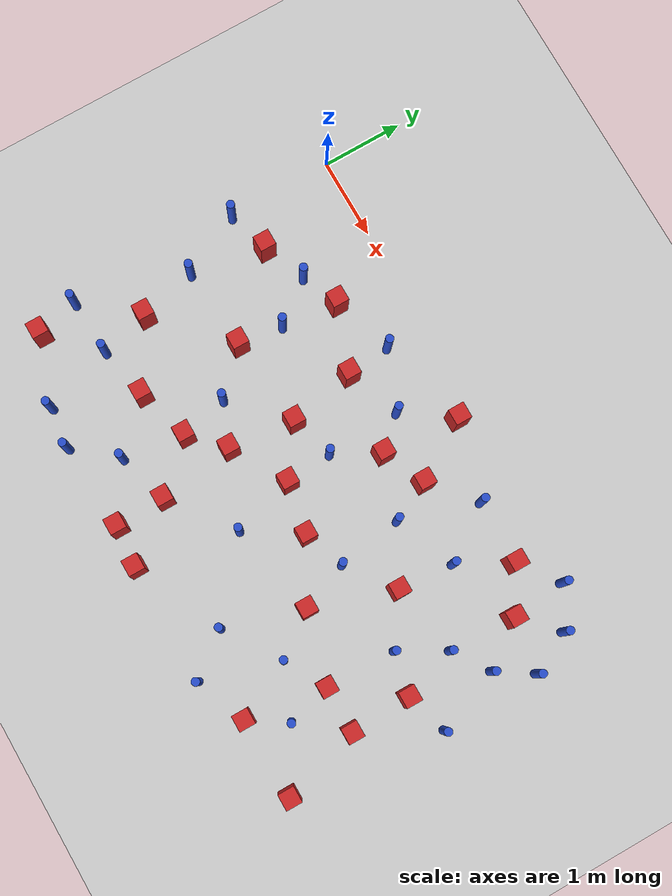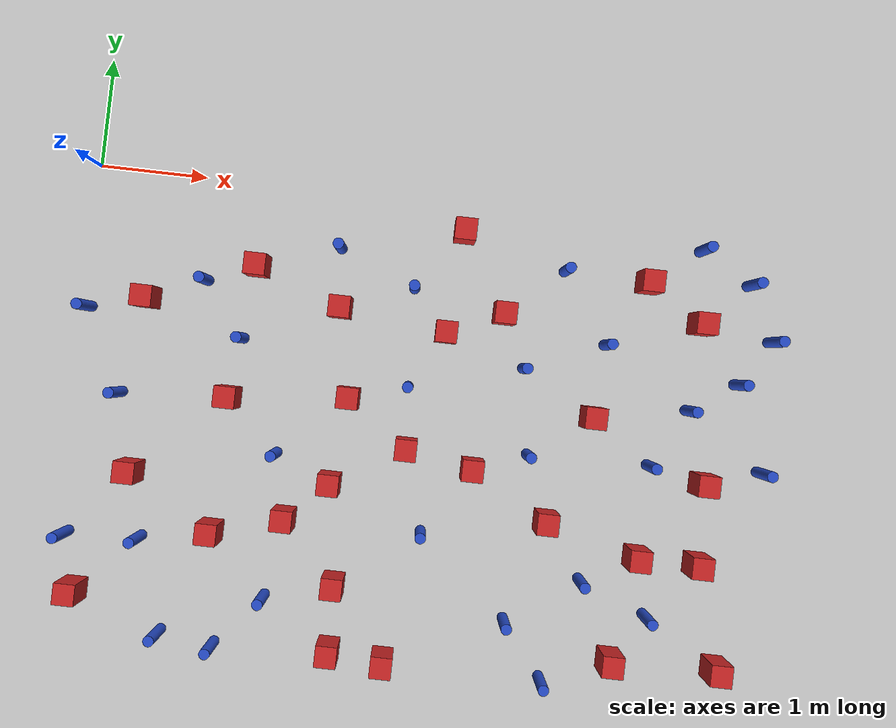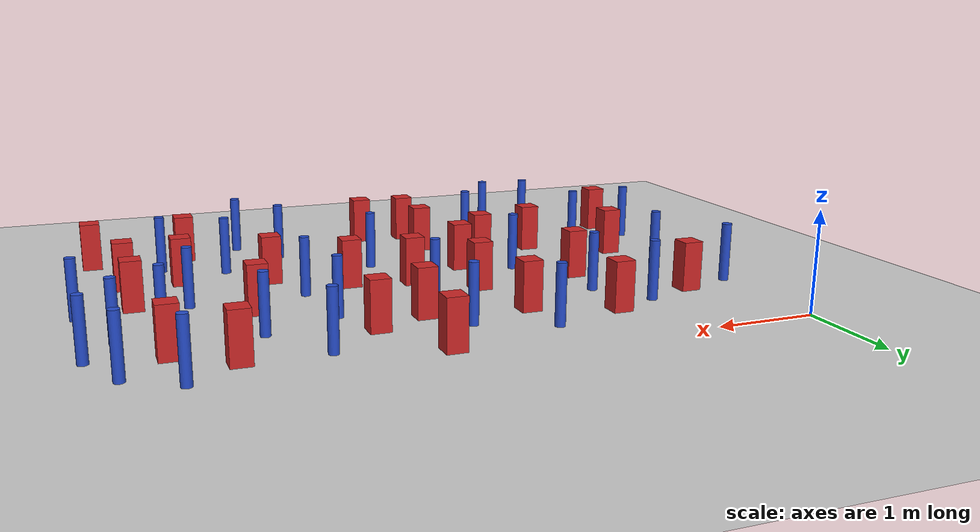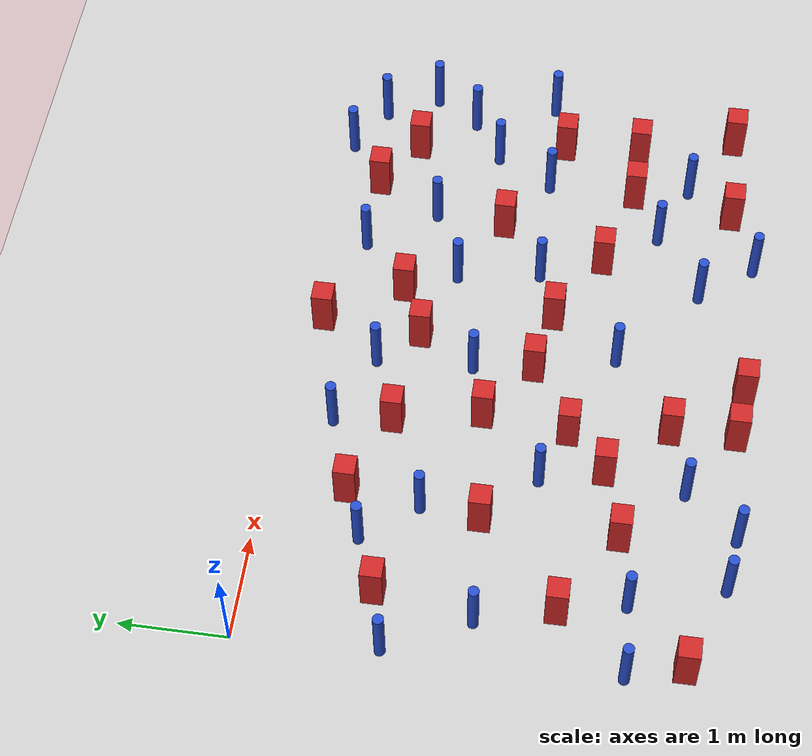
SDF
<sdf version="1.6">
 <world name="default">
  <model name="ground_plane">
   <static>1</static>
   <link name="link">
    <collision name="collision">
     <geometry><plane><normal>0 0 1</normal><size>100 100</size></plane></geometry>
     <surface><friction><ode><mu>100</mu><mu2>50</mu2></ode></friction></surface>
    </collision>
    <visual name="visual">
     <cast_shadows>0</cast_shadows>
     <geometry><plane><normal>0 0 1</normal><size>100 100</size></plane></geometry>
     <material>
      <ambient>1.0 1.0 1.0 1.0</ambient>
      <diffuse>0.8 0.8 0.8 1.0</diffuse>
      <specular>0.01 0.01 0.01 1.000000</specular>
     </material>
    </visual>
   </link>
  </model>
  <model name="pole_obstacle7">
   <static>true</static>
   <pose>4.22786725258 -3.81274407793 -9.47619616065e-06 5.49618799738e-07 2.36310414051e-07 -1.55090534805e-07</pose>
   <link name="link">
    <pose>0 0 0.3 0 -0 0</pose>
    <inertial>
     <mass>1</mass>
     <inertia><ixx>0.145833</ixx><ixy>0</ixy><ixz>0</ixz><iyy>0.145833</iyy><iyz>0</iyz><izz>0.125</izz></inertia>
    </inertial>
    <collision name="collision">
     <geometry><cylinder><radius>0.05</radius><length>.6</length></cylinder></geometry>
    </collision>
    <visual name="visual">
     <geometry><cylinder><radius>0.05</radius><length>.6</length></cylinder></geometry>
     <material>
      <script><name>Gazebo/Blue</name><uri>file://media/materials/scripts/gazebo.material</uri></script>
     </material>
    </visual>
   </link>
  </model>
  <model name="pole_obstacle8">
   <static>true</static>
   <pose>0.0516490565058 -1.32433108705 -9.47619616065e-06 5.49618799737e-07 2.36310414058e-07 -1.55090534802e-07</pose>
   <link name="link">
    <pose>0 0 0.3 0 -0 0</pose>
    <inertial>
     <mass>1</mass>
     <inertia><ixx>0.145833</ixx><ixy>0</ixy><ixz>0</ixz><iyy>0.145833</iyy><iyz>0</iyz><izz>0.125</izz></inertia>
    </inertial>
    <collision name="collision">
     <geometry><cylinder><radius>0.05</radius><length>.6</length></cylinder></geometry>
    </collision>
    <visual name="visual">
     <geometry><cylinder><radius>0.05</radius><length>.6</length></cylinder></geometry>
     <material>
      <script><name>Gazebo/Blue</name><uri>file://media/materials/scripts/gazebo.material</uri></script>
     </material>
    </visual>
   </link>
  </model>
  <model name="pole_obstacle12">
   <static>true</static>
   <pose>4.89849430528 -1.15108140187 -9.47619616065e-06 5.49618799738e-07 2.36310414071e-07 -1.55090534796e-07</pose>
   <link name="link">
    <pose>0 0 0.3 0 -0 0</pose>
    <inertial>
     <mass>1</mass>
     <inertia><ixx>0.145833</ixx><ixy>0</ixy><ixz>0</ixz><iyy>0.145833</iyy><iyz>0</iyz><izz>0.125</izz></inertia>
    </inertial>
    <collision name="collision">
     <geometry><cylinder><radius>0.05</radius><length>.6</length></cylinder></geometry>
    </collision>
    <visual name="visual">
     <geometry><cylinder><radius>0.05</radius><length>.6</length></cylinder></geometry>
     <material>
      <script><name>Gazebo/Blue</name><uri>file://media/materials/scripts/gazebo.material</uri></script>
     </material>
    </visual>
   </link>
  </model>
  <model name="square_post_obstacle11">
   <static>true</static>
   <pose>1.59132149544 -0.778273429128 -6.11067671241e-07 -5.50515727128e-06 -8.79689657224e-07 2.37013304536e-05</pose>
   <link name="link">
    <pose>0 0 0.25 0 -0 0</pose>
    <inertial>
     <mass>100</mass>
     <inertia>
      <ixx>0.166667</ixx>
      <ixy>0</ixy>
      <ixz>0</ixz>
      <iyy>0.166667</iyy>
      <iyz>0</iyz>
      <izz>0.166667</izz>
     </inertia>
    </inertial>
    <collision name="collision"><geometry><box><size>.2 .2 .5</size></box></geometry></collision>
    <visual name="visual">
     <geometry><box><size>.2 .2 .5</size></box></geometry>
     <material>
      <script><name>Gazebo/Red</name><uri>file://media/materials/scripts/gazebo.material</uri></script>
     </material>
    </visual>
   </link>
  </model>
  <model name="pole_obstacle15">
   <static>true</static>
   <pose>6.15772433456 -1.38684801152 -9.47619616065e-06 5.49618799738e-07 2.36310414071e-07 -1.55090534796e-07</pose>
   <link name="link">
    <pose>0 0 0.3 0 -0 0</pose>
    <inertial>
     <mass>1</mass>
     <inertia><ixx>0.145833</ixx><ixy>0</ixy><ixz>0</ixz><iyy>0.145833</iyy><iyz>0</iyz><izz>0.125</izz></inertia>
    </inertial>
    <collision name="collision">
     <geometry><cylinder><radius>0.05</radius><length>.6</length></cylinder></geometry>
    </collision>
    <visual name="visual">
     <geometry><cylinder><radius>0.05</radius><length>.6</length></cylinder></geometry>
     <material>
      <script><name>Gazebo/Blue</name><uri>file://media/materials/scripts/gazebo.material</uri></script>
     </material>
    </visual>
   </link>
  </model>
  <model name="square_post_obstacle13">
   <static>true</static>
   <pose>2.63119987402 -4.26616733092 -6.11067671241e-07 -5.50515727128e-06 -8.79689657224e-07 2.37013304536e-05</pose>
   <link name="link">
    <pose>0 0 0.25 0 -0 0</pose>
    <inertial>
     <mass>100</mass>
     <inertia>
      <ixx>0.166667</ixx>
      <ixy>0</ixy>
      <ixz>0</ixz>
      <iyy>0.166667</iyy>
      <iyz>0</iyz>
      <izz>0.166667</izz>
     </inertia>
    </inertial>
    <collision name="collision"><geometry><box><size>.2 .2 .5</size></box></geometry></collision>
    <visual name="visual">
     <geometry><box><size>.2 .2 .5</size></box></geometry>
     <material>
      <script><name>Gazebo/Red</name><uri>file://media/materials/scripts/gazebo.material</uri></script>
     </material>
    </visual>
   </link>
  </model>
  <model name="pole_obstacle20">
   <static>true</static>
   <pose>5.41964103082 -2.22877216106 -9.47619616065e-06 5.49618799738e-07 2.36310414051e-07 -1.55090534805e-07</pose>
   <link name="link">
    <pose>0 0 0.3 0 -0 0</pose>
    <inertial>
     <mass>1</mass>
     <inertia><ixx>0.145833</ixx><ixy>0</ixy><ixz>0</ixz><iyy>0.145833</iyy><iyz>0</iyz><izz>0.125</izz></inertia>
    </inertial>
    <collision name="collision">
     <geometry><cylinder><radius>0.05</radius><length>.6</length></cylinder></geometry>
    </collision>
    <visual name="visual">
     <geometry><cylinder><radius>0.05</radius><length>.6</length></cylinder></geometry>
     <material>
      <script><name>Gazebo/Blue</name><uri>file://media/materials/scripts/gazebo.material</uri></script>
     </material>
    </visual>
   </link>
  </model>
  <model name="pole_obstacle26">
   <static>true</static>
   <pose>4.8938818733 -3.36407362401 -9.47619616065e-06 5.49618799738e-07 2.36310414051e-07 -1.55090534805e-07</pose>
   <link name="link">
    <pose>0 0 0.3 0 -0 0</pose>
    <inertial>
     <mass>1</mass>
     <inertia><ixx>0.145833</ixx><ixy>0</ixy><ixz>0</ixz><iyy>0.145833</iyy><iyz>0</iyz><izz>0.125</izz></inertia>
    </inertial>
    <collision name="collision">
     <geometry><cylinder><radius>0.05</radius><length>.6</length></cylinder></geometry>
    </collision>
    <visual name="visual">
     <geometry><cylinder><radius>0.05</radius><length>.6</length></cylinder></geometry>
     <material>
      <script><name>Gazebo/Blue</name><uri>file://media/materials/scripts/gazebo.material</uri></script>
     </material>
    </visual>
   </link>
  </model>
  <model name="pole_obstacle29">
   <static>true</static>
   <pose>1.12095912817 -0.960640257174 -9.47619616065e-06 5.49618799737e-07 2.3631041406e-07 -1.550905348e-07</pose>
   <link name="link">
    <pose>0 0 0.3 0 -0 0</pose>
    <inertial>
     <mass>1</mass>
     <inertia><ixx>0.145833</ixx><ixy>0</ixy><ixz>0</ixz><iyy>0.145833</iyy><iyz>0</iyz><izz>0.125</izz></inertia>
    </inertial>
    <collision name="collision">
     <geometry><cylinder><radius>0.05</radius><length>.6</length></cylinder></geometry>
    </collision>
    <visual name="visual">
     <geometry><cylinder><radius>0.05</radius><length>.6</length></cylinder></geometry>
     <material>
      <script><name>Gazebo/Blue</name><uri>file://media/materials/scripts/gazebo.material</uri></script>
     </material>
    </visual>
   </link>
  </model>
  <model name="square_post_obstacle23">
   <static>true</static>
   <pose>5.38953993593 -3.08819030502 -6.11067671241e-07 -5.50515727128e-06 -8.79689657224e-07 2.37013304536e-05</pose>
   <link name="link">
    <pose>0 0 0.25 0 -0 0</pose>
    <inertial>
     <mass>100</mass>
     <inertia>
      <ixx>0.166667</ixx>
      <ixy>0</ixy>
      <ixz>0</ixz>
      <iyy>0.166667</iyy>
      <iyz>0</iyz>
      <izz>0.166667</izz>
     </inertia>
    </inertial>
    <collision name="collision"><geometry><box><size>.2 .2 .5</size></box></geometry></collision>
    <visual name="visual">
     <geometry><box><size>.2 .2 .5</size></box></geometry>
     <material>
      <script><name>Gazebo/Red</name><uri>file://media/materials/scripts/gazebo.material</uri></script>
     </material>
    </visual>
   </link>
  </model>
  <model name="square_post_obstacle26">
   <static>true</static>
   <pose>0.201995792169 -3.96537536279 -6.11067671241e-07 -5.50515727128e-06 -8.79689657224e-07 2.37013304536e-05</pose>
   <link name="link">
    <pose>0 0 0.25 0 -0 0</pose>
    <inertial>
     <mass>100</mass>
     <inertia>
      <ixx>0.166667</ixx>
      <ixy>0</ixy>
      <ixz>0</ixz>
      <iyy>0.166667</iyy>
      <iyz>0</iyz>
      <izz>0.166667</izz>
     </inertia>
    </inertial>
    <collision name="collision"><geometry><box><size>.2 .2 .5</size></box></geometry></collision>
    <visual name="visual">
     <geometry><box><size>.2 .2 .5</size></box></geometry>
     <material>
      <script><name>Gazebo/Red</name><uri>file://media/materials/scripts/gazebo.material</uri></script>
     </material>
    </visual>
   </link>
  </model>
  <model name="square_post_obstacle27">
   <static>true</static>
   <pose>3.39904596129 -1.20095714573 -6.11067671241e-07 -5.50515727128e-06 -8.79689657224e-07 2.37013304536e-05</pose>
   <link name="link">
    <pose>0 0 0.25 0 -0 0</pose>
    <inertial>
     <mass>100</mass>
     <inertia>
      <ixx>0.166667</ixx>
      <ixy>0</ixy>
      <ixz>0</ixz>
      <iyy>0.166667</iyy>
      <iyz>0</iyz>
      <izz>0.166667</izz>
     </inertia>
    </inertial>
    <collision name="collision"><geometry><box><size>.2 .2 .5</size></box></geometry></collision>
    <visual name="visual">
     <geometry><box><size>.2 .2 .5</size></box></geometry>
     <material>
      <script><name>Gazebo/Red</name><uri>file://media/materials/scripts/gazebo.material</uri></script>
     </material>
    </visual>
   </link>
  </model>
  <model name="pole_obstacle44">
   <static>true</static>
   <pose>0.426844318468 -2.0910982815 -9.47619616065e-06 5.49618799738e-07 2.36310414065e-07 -1.55090534798e-07</pose>
   <link name="link">
    <pose>0 0 0.3 0 -0 0</pose>
    <inertial>
     <mass>1</mass>
     <inertia><ixx>0.145833</ixx><ixy>0</ixy><ixz>0</ixz><iyy>0.145833</iyy><iyz>0</iyz><izz>0.125</izz></inertia>
    </inertial>
    <collision name="collision">
     <geometry><cylinder><radius>0.05</radius><length>.6</length></cylinder></geometry>
    </collision>
    <visual name="visual">
     <geometry><cylinder><radius>0.05</radius><length>.6</length></cylinder></geometry>
     <material>
      <script><name>Gazebo/Blue</name><uri>file://media/materials/scripts/gazebo.material</uri></script>
     </material>
    </visual>
   </link>
  </model>
  <model name="square_post_obstacle39">
   <static>true</static>
   <pose>4.8424540963 -1.83761672808 -6.11067671241e-07 -5.50515727128e-06 -8.79689657224e-07 2.37013304536e-05</pose>
   <link name="link">
    <pose>0 0 0.25 0 -0 0</pose>
    <inertial>
     <mass>100</mass>
     <inertia>
      <ixx>0.166667</ixx>
      <ixy>0</ixy>
      <ixz>0</ixz>
      <iyy>0.166667</iyy>
      <iyz>0</iyz>
      <izz>0.166667</izz>
     </inertia>
    </inertial>
    <collision name="collision"><geometry><box><size>.2 .2 .5</size></box></geometry></collision>
    <visual name="visual">
     <geometry><box><size>.2 .2 .5</size></box></geometry>
     <material>
      <script><name>Gazebo/Red</name><uri>file://media/materials/scripts/gazebo.material</uri></script>
     </material>
    </visual>
   </link>
  </model>
  <model name="pole_obstacle49">
   <static>true</static>
   <pose>4.28264956757 -2.25368249328 -9.47619616065e-06 5.49618799738e-07 2.36310414051e-07 -1.55090534805e-07</pose>
   <link name="link">
    <pose>0 0 0.3 0 -0 0</pose>
    <inertial>
     <mass>1</mass>
     <inertia><ixx>0.145833</ixx><ixy>0</ixy><ixz>0</ixz><iyy>0.145833</iyy><iyz>0</iyz><izz>0.125</izz></inertia>
    </inertial>
    <collision name="collision">
     <geometry><cylinder><radius>0.05</radius><length>.6</length></cylinder></geometry>
    </collision>
    <visual name="visual">
     <geometry><cylinder><radius>0.05</radius><length>.6</length></cylinder></geometry>
     <material>
      <script><name>Gazebo/Blue</name><uri>file://media/materials/scripts/gazebo.material</uri></script>
     </material>
    </visual>
   </link>
  </model>
  <model name="pole_obstacle51">
   <static>true</static>
   <pose>4.62221380689 -4.32143371208 -9.47619616065e-06 5.49618799737e-07 2.36310414037e-07 -1.55090534814e-07</pose>
   <link name="link">
    <pose>0 0 0.3 0 -0 0</pose>
    <inertial>
     <mass>1</mass>
     <inertia><ixx>0.145833</ixx><ixy>0</ixy><ixz>0</ixz><iyy>0.145833</iyy><iyz>0</iyz><izz>0.125</izz></inertia>
    </inertial>
    <collision name="collision">
     <geometry><cylinder><radius>0.05</radius><length>.6</length></cylinder></geometry>
    </collision>
    <visual name="visual">
     <geometry><cylinder><radius>0.05</radius><length>.6</length></cylinder></geometry>
     <material>
      <script><name>Gazebo/Blue</name><uri>file://media/materials/scripts/gazebo.material</uri></script>
     </material>
    </visual>
   </link>
  </model>
  <model name="square_post_obstacle48">
   <static>true</static>
   <pose>0.594565852742 -1.18137664891 -6.11067671241e-07 -5.50515727128e-06 -8.79689657224e-07 2.37013304536e-05</pose>
   <link name="link">
    <pose>0 0 0.25 0 -0 0</pose>
    <inertial>
     <mass>100</mass>
     <inertia>
      <ixx>0.166667</ixx>
      <ixy>0</ixy>
      <ixz>0</ixz>
      <iyy>0.166667</iyy>
      <iyz>0</iyz>
      <izz>0.166667</izz>
     </inertia>
    </inertial>
    <collision name="collision"><geometry><box><size>.2 .2 .5</size></box></geometry></collision>
    <visual name="visual">
     <geometry><box><size>.2 .2 .5</size></box></geometry>
     <material>
      <script><name>Gazebo/Red</name><uri>file://media/materials/scripts/gazebo.material</uri></script>
     </material>
    </visual>
   </link>
  </model>
  <model name="pole_obstacle63">
   <static>true</static>
   <pose>4.15895126868 -1.45374956191 -9.47619616065e-06 5.49618799738e-07 2.36310414071e-07 -1.55090534796e-07</pose>
   <link name="link">
    <pose>0 0 0.3 0 -0 0</pose>
    <inertial>
     <mass>1</mass>
     <inertia><ixx>0.145833</ixx><ixy>0</ixy><ixz>0</ixz><iyy>0.145833</iyy><iyz>0</iyz><izz>0.125</izz></inertia>
    </inertial>
    <collision name="collision">
     <geometry><cylinder><radius>0.05</radius><length>.6</length></cylinder></geometry>
    </collision>
    <visual name="visual">
     <geometry><cylinder><radius>0.05</radius><length>.6</length></cylinder></geometry>
     <material>
      <script><name>Gazebo/Blue</name><uri>file://media/materials/scripts/gazebo.material</uri></script>
     </material>
    </visual>
   </link>
  </model>
  <model name="square_post_obstacle55">
   <static>true</static>
   <pose>1.42001935348 -3.28357251674 -6.11067671241e-07 -5.50515727128e-06 -8.79689657224e-07 2.37013304536e-05</pose>
   <link name="link">
    <pose>0 0 0.25 0 -0 0</pose>
    <inertial>
     <mass>100</mass>
     <inertia>
      <ixx>0.166667</ixx>
      <ixy>0</ixy>
      <ixz>0</ixz>
      <iyy>0.166667</iyy>
      <iyz>0</iyz>
      <izz>0.166667</izz>
     </inertia>
    </inertial>
    <collision name="collision"><geometry><box><size>.2 .2 .5</size></box></geometry></collision>
    <visual name="visual">
     <geometry><box><size>.2 .2 .5</size></box></geometry>
     <material>
      <script><name>Gazebo/Red</name><uri>file://media/materials/scripts/gazebo.material</uri></script>
     </material>
    </visual>
   </link>
  </model>
  <model name="square_post_obstacle59">
   <static>true</static>
   <pose>6.23080066311 -4.04122794017 -6.11067671241e-07 -5.50515727128e-06 -8.79689657224e-07 2.37013304536e-05</pose>
   <link name="link">
    <pose>0 0 0.25 0 -0 0</pose>
    <inertial>
     <mass>100</mass>
     <inertia>
      <ixx>0.166667</ixx>
      <ixy>0</ixy>
      <ixz>0</ixz>
      <iyy>0.166667</iyy>
      <iyz>0</iyz>
      <izz>0.166667</izz>
     </inertia>
    </inertial>
    <collision name="collision"><geometry><box><size>.2 .2 .5</size></box></geometry></collision>
    <visual name="visual">
     <geometry><box><size>.2 .2 .5</size></box></geometry>
     <material>
      <script><name>Gazebo/Red</name><uri>file://media/materials/scripts/gazebo.material</uri></script>
     </material>
    </visual>
   </link>
  </model>
  <model name="square_post_obstacle61">
   <static>true</static>
   <pose>2.39934404283 -1.07961687893 -6.11067671241e-07 -5.50515727128e-06 -8.79689657224e-07 2.37013304536e-05</pose>
   <link name="link">
    <pose>0 0 0.25 0 -0 0</pose>
    <inertial>
     <mass>100</mass>
     <inertia>
      <ixx>0.166667</ixx>
      <ixy>0</ixy>
      <ixz>0</ixz>
      <iyy>0.166667</iyy>
      <iyz>0</iyz>
      <izz>0.166667</izz>
     </inertia>
    </inertial>
    <collision name="collision"><geometry><box><size>.2 .2 .5</size></box></geometry></collision>
    <visual name="visual">
     <geometry><box><size>.2 .2 .5</size></box></geometry>
     <material>
      <script><name>Gazebo/Red</name><uri>file://media/materials/scripts/gazebo.material</uri></script>
     </material>
    </visual>
   </link>
  </model>
  <model name="pole_obstacle81">
   <static>true</static>
   <pose>3.10352774486 -1.74286658065 -9.47619616065e-06 5.49618799737e-07 2.36310414072e-07 -1.55090534793e-07</pose>
   <link name="link">
    <pose>0 0 0.3 0 -0 0</pose>
    <inertial>
     <mass>1</mass>
     <inertia><ixx>0.145833</ixx><ixy>0</ixy><ixz>0</ixz><iyy>0.145833</iyy><iyz>0</iyz><izz>0.125</izz></inertia>
    </inertial>
    <collision name="collision">
     <geometry><cylinder><radius>0.05</radius><length>.6</length></cylinder></geometry>
    </collision>
    <visual name="visual">
     <geometry><cylinder><radius>0.05</radius><length>.6</length></cylinder></geometry>
     <material>
      <script><name>Gazebo/Blue</name><uri>file://media/materials/scripts/gazebo.material</uri></script>
     </material>
    </visual>
   </link>
  </model>
  <model name="pole_obstacle82">
   <static>true</static>
   <pose>4.44778898723 -0.505756573387 -9.47619616065e-06 5.49618799737e-07 2.36310414058e-07 -1.55090534802e-07</pose>
   <link name="link">
    <pose>0 0 0.3 0 -0 0</pose>
    <inertial>
     <mass>1</mass>
     <inertia><ixx>0.145833</ixx><ixy>0</ixy><ixz>0</ixz><iyy>0.145833</iyy><iyz>0</iyz><izz>0.125</izz></inertia>
    </inertial>
    <collision name="collision">
     <geometry><cylinder><radius>0.05</radius><length>.6</length></cylinder></geometry>
    </collision>
    <visual name="visual">
     <geometry><cylinder><radius>0.05</radius><length>.6</length></cylinder></geometry>
     <material>
      <script><name>Gazebo/Blue</name><uri>file://media/materials/scripts/gazebo.material</uri></script>
     </material>
    </visual>
   </link>
  </model>
  <model name="pole_obstacle83">
   <static>true</static>
   <pose>6.43424784286 -0.956483014539 -9.47619616065e-06 5.49618799738e-07 2.36310414063e-07 -1.55090534799e-07</pose>
   <link name="link">
    <pose>0 0 0.3 0 -0 0</pose>
    <inertial>
     <mass>1</mass>
     <inertia><ixx>0.145833</ixx><ixy>0</ixy><ixz>0</ixz><iyy>0.145833</iyy><iyz>0</iyz><izz>0.125</izz></inertia>
    </inertial>
    <collision name="collision">
     <geometry><cylinder><radius>0.05</radius><length>.6</length></cylinder></geometry>
    </collision>
    <visual name="visual">
     <geometry><cylinder><radius>0.05</radius><length>.6</length></cylinder></geometry>
     <material>
      <script><name>Gazebo/Blue</name><uri>file://media/materials/scripts/gazebo.material</uri></script>
     </material>
    </visual>
   </link>
  </model>
  <model name="pole_obstacle88">
   <static>true</static>
   <pose>5.69776235959 -0.176264403419 -9.47619616065e-06 5.49618799738e-07 2.36310414072e-07 -1.55090534795e-07</pose>
   <link name="link">
    <pose>0 0 0.3 0 -0 0</pose>
    <inertial>
     <mass>1</mass>
     <inertia><ixx>0.145833</ixx><ixy>0</ixy><ixz>0</ixz><iyy>0.145833</iyy><iyz>0</iyz><izz>0.125</izz></inertia>
    </inertial>
    <collision name="collision">
     <geometry><cylinder><radius>0.05</radius><length>.6</length></cylinder></geometry>
    </collision>
    <visual name="visual">
     <geometry><cylinder><radius>0.05</radius><length>.6</length></cylinder></geometry>
     <material>
      <script><name>Gazebo/Blue</name><uri>file://media/materials/scripts/gazebo.material</uri></script>
     </material>
    </visual>
   </link>
  </model>
  <model name="pole_obstacle93">
   <static>true</static>
   <pose>3.36731981716 -3.08292273707 -9.47619616065e-06 5.49618799737e-07 2.36310414051e-07 -1.55090534807e-07</pose>
   <link name="link">
    <pose>0 0 0.3 0 -0 0</pose>
    <inertial>
     <mass>1</mass>
     <inertia><ixx>0.145833</ixx><ixy>0</ixy><ixz>0</ixz><iyy>0.145833</iyy><iyz>0</iyz><izz>0.125</izz></inertia>
    </inertial>
    <collision name="collision">
     <geometry><cylinder><radius>0.05</radius><length>.6</length></cylinder></geometry>
    </collision>
    <visual name="visual">
     <geometry><cylinder><radius>0.05</radius><length>.6</length></cylinder></geometry>
     <material>
      <script><name>Gazebo/Blue</name><uri>file://media/materials/scripts/gazebo.material</uri></script>
     </material>
    </visual>
   </link>
  </model>
  <model name="square_post_obstacle90">
   <static>true</static>
   <pose>1.45047162254 -2.02075518563 -6.11067671241e-07 -5.50515727128e-06 -8.79689657224e-07 2.37013304536e-05</pose>
   <link name="link">
    <pose>0 0 0.25 0 -0 0</pose>
    <inertial>
     <mass>100</mass>
     <inertia>
      <ixx>0.166667</ixx>
      <ixy>0</ixy>
      <ixz>0</ixz>
      <iyy>0.166667</iyy>
      <iyz>0</iyz>
      <izz>0.166667</izz>
     </inertia>
    </inertial>
    <collision name="collision"><geometry><box><size>.2 .2 .5</size></box></geometry></collision>
    <visual name="visual">
     <geometry><box><size>.2 .2 .5</size></box></geometry>
     <material>
      <script><name>Gazebo/Red</name><uri>file://media/materials/scripts/gazebo.material</uri></script>
     </material>
    </visual>
   </link>
  </model>
  <model name="square_post_obstacle91">
   <static>true</static>
   <pose>0.615335793902 -2.8042724389 -6.11067671241e-07 -5.50515727128e-06 -8.79689657224e-07 2.37013304536e-05</pose>
   <link name="link">
    <pose>0 0 0.25 0 -0 0</pose>
    <inertial>
     <mass>100</mass>
     <inertia>
      <ixx>0.166667</ixx>
      <ixy>0</ixy>
      <ixz>0</ixz>
      <iyy>0.166667</iyy>
      <iyz>0</iyz>
      <izz>0.166667</izz>
     </inertia>
    </inertial>
    <collision name="collision"><geometry><box><size>.2 .2 .5</size></box></geometry></collision>
    <visual name="visual">
     <geometry><box><size>.2 .2 .5</size></box></geometry>
     <material>
      <script><name>Gazebo/Red</name><uri>file://media/materials/scripts/gazebo.material</uri></script>
     </material>
    </visual>
   </link>
  </model>
  <model name="pole_obstacle100">
   <static>true</static>
   <pose>3.06338072162 -0.821809864029 -9.47619616065e-06 5.49618799738e-07 2.36310414075e-07 -1.55090534793e-07</pose>
   <link name="link">
    <pose>0 0 0.3 0 -0 0</pose>
    <inertial>
     <mass>1</mass>
     <inertia><ixx>0.145833</ixx><ixy>0</ixy><ixz>0</ixz><iyy>0.145833</iyy><iyz>0</iyz><izz>0.125</izz></inertia>
    </inertial>
    <collision name="collision">
     <geometry><cylinder><radius>0.05</radius><length>.6</length></cylinder></geometry>
    </collision>
    <visual name="visual">
     <geometry><cylinder><radius>0.05</radius><length>.6</length></cylinder></geometry>
     <material>
      <script><name>Gazebo/Blue</name><uri>file://media/materials/scripts/gazebo.material</uri></script>
     </material>
    </visual>
   </link>
  </model>
  <model name="square_post_obstacle93">
   <static>true</static>
   <pose>5.24258865014 -4.07026973739 -6.11067671241e-07 -5.50515727128e-06 -8.79689657224e-07 2.37013304536e-05</pose>
   <link name="link">
    <pose>0 0 0.25 0 -0 0</pose>
    <inertial>
     <mass>100</mass>
     <inertia>
      <ixx>0.166667</ixx>
      <ixy>0</ixy>
      <ixz>0</ixz>
      <iyy>0.166667</iyy>
      <iyz>0</iyz>
      <izz>0.166667</izz>
     </inertia>
    </inertial>
    <collision name="collision"><geometry><box><size>.2 .2 .5</size></box></geometry></collision>
    <visual name="visual">
     <geometry><box><size>.2 .2 .5</size></box></geometry>
     <material>
      <script><name>Gazebo/Red</name><uri>file://media/materials/scripts/gazebo.material</uri></script>
     </material>
    </visual>
   </link>
  </model>
  <model name="square_post_obstacle106">
   <static>true</static>
   <pose>3.14026489765 -4.30944496566 -6.11067671241e-07 -5.50515727128e-06 -8.79689657224e-07 2.37013304536e-05</pose>
   <link name="link">
    <pose>0 0 0.25 0 -0 0</pose>
    <inertial>
     <mass>100</mass>
     <inertia>
      <ixx>0.166667</ixx>
      <ixy>0</ixy>
      <ixz>0</ixz>
      <iyy>0.166667</iyy>
      <iyz>0</iyz>
      <izz>0.166667</izz>
     </inertia>
    </inertial>
    <collision name="collision"><geometry><box><size>.2 .2 .5</size></box></geometry></collision>
    <visual name="visual">
     <geometry><box><size>.2 .2 .5</size></box></geometry>
     <material>
      <script><name>Gazebo/Red</name><uri>file://media/materials/scripts/gazebo.material</uri></script>
     </material>
    </visual>
   </link>
  </model>
  <model name="square_post_obstacle107">
   <static>true</static>
   <pose>3.77742125236 -2.43921450313 -6.11067671241e-07 -5.50515727128e-06 -8.79689657224e-07 2.37013304536e-05</pose>
   <link name="link">
    <pose>0 0 0.25 0 -0 0</pose>
    <inertial>
     <mass>100</mass>
     <inertia>
      <ixx>0.166667</ixx>
      <ixy>0</ixy>
      <ixz>0</ixz>
      <iyy>0.166667</iyy>
      <iyz>0</iyz>
      <izz>0.166667</izz>
     </inertia>
    </inertial>
    <collision name="collision"><geometry><box><size>.2 .2 .5</size></box></geometry></collision>
    <visual name="visual">
     <geometry><box><size>.2 .2 .5</size></box></geometry>
     <material>
      <script><name>Gazebo/Red</name><uri>file://media/materials/scripts/gazebo.material</uri></script>
     </material>
    </visual>
   </link>
  </model>
  <model name="square_post_obstacle109">
   <static>true</static>
   <pose>5.75663733745 -0.862959408733 -6.11067671241e-07 -5.50515727128e-06 -8.79689657224e-07 2.37013304536e-05</pose>
   <link name="link">
    <pose>0 0 0.25 0 -0 0</pose>
    <inertial>
     <mass>100</mass>
     <inertia>
      <ixx>0.166667</ixx>
      <ixy>0</ixy>
      <ixz>0</ixz>
      <iyy>0.166667</iyy>
      <iyz>0</iyz>
      <izz>0.166667</izz>
     </inertia>
    </inertial>
    <collision name="collision"><geometry><box><size>.2 .2 .5</size></box></geometry></collision>
    <visual name="visual">
     <geometry><box><size>.2 .2 .5</size></box></geometry>
     <material>
      <script><name>Gazebo/Red</name><uri>file://media/materials/scripts/gazebo.material</uri></script>
     </material>
    </visual>
   </link>
  </model>
  <model name="pole_obstacle115">
   <static>true</static>
   <pose>2.33903917096 -0.523236373664 -9.47619616065e-06 5.49618799737e-07 2.36310414075e-07 -1.55090534792e-07</pose>
   <link name="link">
    <pose>0 0 0.3 0 -0 0</pose>
    <inertial>
     <mass>1</mass>
     <inertia><ixx>0.145833</ixx><ixy>0</ixy><ixz>0</ixz><iyy>0.145833</iyy><iyz>0</iyz><izz>0.125</izz></inertia>
    </inertial>
    <collision name="collision">
     <geometry><cylinder><radius>0.05</radius><length>.6</length></cylinder></geometry>
    </collision>
    <visual name="visual">
     <geometry><cylinder><radius>0.05</radius><length>.6</length></cylinder></geometry>
     <material>
      <script><name>Gazebo/Blue</name><uri>file://media/materials/scripts/gazebo.material</uri></script>
     </material>
    </visual>
   </link>
  </model>
  <model name="pole_obstacle116">
   <static>true</static>
   <pose>0.0676753426592 -3.44876549071 -9.4761961606e-06 5.49618799729e-07 2.36310413996e-07 -1.55090534826e-07</pose>
   <link name="link">
    <pose>0 0 0.3 0 -0 0</pose>
    <inertial>
     <mass>1</mass>
     <inertia><ixx>0.145833</ixx><ixy>0</ixy><ixz>0</ixz><iyy>0.145833</iyy><iyz>0</iyz><izz>0.125</izz></inertia>
    </inertial>
    <collision name="collision">
     <geometry><cylinder><radius>0.05</radius><length>.6</length></cylinder></geometry>
    </collision>
    <visual name="visual">
     <geometry><cylinder><radius>0.05</radius><length>.6</length></cylinder></geometry>
     <material>
      <script><name>Gazebo/Blue</name><uri>file://media/materials/scripts/gazebo.material</uri></script>
     </material>
    </visual>
   </link>
  </model>
  <model name="square_post_obstacle118">
   <static>true</static>
   <pose>2.56453069936 -1.90598777803 -6.11067671241e-07 -5.50515727128e-06 -8.79689657224e-07 2.37013304536e-05</pose>
   <link name="link">
    <pose>0 0 0.25 0 -0 0</pose>
    <inertial>
     <mass>100</mass>
     <inertia>
      <ixx>0.166667</ixx>
      <ixy>0</ixy>
      <ixz>0</ixz>
      <iyy>0.166667</iyy>
      <iyz>0</iyz>
      <izz>0.166667</izz>
     </inertia>
    </inertial>
    <collision name="collision"><geometry><box><size>.2 .2 .5</size></box></geometry></collision>
    <visual name="visual">
     <geometry><box><size>.2 .2 .5</size></box></geometry>
     <material>
      <script><name>Gazebo/Red</name><uri>file://media/materials/scripts/gazebo.material</uri></script>
     </material>
    </visual>
   </link>
  </model>
  <model name="square_post_obstacle126">
   <static>true</static>
   <pose>3.47262635361 -0.249686978791 -6.11067671241e-07 -5.50515727128e-06 -8.79689657224e-07 2.37013304536e-05</pose>
   <link name="link">
    <pose>0 0 0.25 0 -0 0</pose>
    <inertial>
     <mass>100</mass>
     <inertia>
      <ixx>0.166667</ixx>
      <ixy>0</ixy>
      <ixz>0</ixz>
      <iyy>0.166667</iyy>
      <iyz>0</iyz>
      <izz>0.166667</izz>
     </inertia>
    </inertial>
    <collision name="collision"><geometry><box><size>.2 .2 .5</size></box></geometry></collision>
    <visual name="visual">
     <geometry><box><size>.2 .2 .5</size></box></geometry>
     <material>
      <script><name>Gazebo/Red</name><uri>file://media/materials/scripts/gazebo.material</uri></script>
     </material>
    </visual>
   </link>
  </model>
  <model name="pole_obstacle132">
   <static>true</static>
   <pose>1.0352277736 -4.27608629297 -9.47619616065e-06 5.49618799737e-07 2.36310414059e-07 -1.550905348e-07</pose>
   <link name="link">
    <pose>0 0 0.3 0 -0 0</pose>
    <inertial>
     <mass>1</mass>
     <inertia><ixx>0.145833</ixx><ixy>0</ixy><ixz>0</ixz><iyy>0.145833</iyy><iyz>0</iyz><izz>0.125</izz></inertia>
    </inertial>
    <collision name="collision">
     <geometry><cylinder><radius>0.05</radius><length>.6</length></cylinder></geometry>
    </collision>
    <visual name="visual">
     <geometry><cylinder><radius>0.05</radius><length>.6</length></cylinder></geometry>
     <material>
      <script><name>Gazebo/Blue</name><uri>file://media/materials/scripts/gazebo.material</uri></script>
     </material>
    </visual>
   </link>
  </model>
  <model name="pole_obstacle134">
   <static>true</static>
   <pose>5.72765287005 -1.67738326548 -9.47619616065e-06 5.49618799738e-07 2.36310414071e-07 -1.55090534796e-07</pose>
   <link name="link">
    <pose>0 0 0.3 0 -0 0</pose>
    <inertial>
     <mass>1</mass>
     <inertia><ixx>0.145833</ixx><ixy>0</ixy><ixz>0</ixz><iyy>0.145833</iyy><iyz>0</iyz><izz>0.125</izz></inertia>
    </inertial>
    <collision name="collision">
     <geometry><cylinder><radius>0.05</radius><length>.6</length></cylinder></geometry>
    </collision>
    <visual name="visual">
     <geometry><cylinder><radius>0.05</radius><length>.6</length></cylinder></geometry>
     <material>
      <script><name>Gazebo/Blue</name><uri>file://media/materials/scripts/gazebo.material</uri></script>
     </material>
    </visual>
   </link>
  </model>
  <model name="pole_obstacle139">
   <static>true</static>
   <pose>6.18081852382 -0.450516501248 -9.47619616065e-06 5.49618799737e-07 2.36310414073e-07 -1.55090534793e-07</pose>
   <link name="link">
    <pose>0 0 0.3 0 -0 0</pose>
    <inertial>
     <mass>1</mass>
     <inertia><ixx>0.145833</ixx><ixy>0</ixy><ixz>0</ixz><iyy>0.145833</iyy><iyz>0</iyz><izz>0.125</izz></inertia>
    </inertial>
    <collision name="collision">
     <geometry><cylinder><radius>0.05</radius><length>.6</length></cylinder></geometry>
    </collision>
    <visual name="visual">
     <geometry><cylinder><radius>0.05</radius><length>.6</length></cylinder></geometry>
     <material>
      <script><name>Gazebo/Blue</name><uri>file://media/materials/scripts/gazebo.material</uri></script>
     </material>
    </visual>
   </link>
  </model>
  <model name="pole_obstacle143">
   <static>true</static>
   <pose>6.46162182976 -2.18106539951 -9.47619616065e-06 5.49618799738e-07 2.36310414051e-07 -1.55090534805e-07</pose>
   <link name="link">
    <pose>0 0 0.3 0 -0 0</pose>
    <inertial>
     <mass>1</mass>
     <inertia><ixx>0.145833</ixx><ixy>0</ixy><ixz>0</ixz><iyy>0.145833</iyy><iyz>0</iyz><izz>0.125</izz></inertia>
    </inertial>
    <collision name="collision">
     <geometry><cylinder><radius>0.05</radius><length>.6</length></cylinder></geometry>
    </collision>
    <visual name="visual">
     <geometry><cylinder><radius>0.05</radius><length>.6</length></cylinder></geometry>
     <material>
      <script><name>Gazebo/Blue</name><uri>file://media/materials/scripts/gazebo.material</uri></script>
     </material>
    </visual>
   </link>
  </model>
  <model name="square_post_obstacle141">
   <static>true</static>
   <pose>5.93298389626 -2.3408674398 -6.11067671241e-07 -5.50515727128e-06 -8.79689657224e-07 2.37013304536e-05</pose>
   <link name="link">
    <pose>0 0 0.25 0 -0 0</pose>
    <inertial>
     <mass>100</mass>
     <inertia>
      <ixx>0.166667</ixx>
      <ixy>0</ixy>
      <ixz>0</ixz>
      <iyy>0.166667</iyy>
      <iyz>0</iyz>
      <izz>0.166667</izz>
     </inertia>
    </inertial>
    <collision name="collision"><geometry><box><size>.2 .2 .5</size></box></geometry></collision>
    <visual name="visual">
     <geometry><box><size>.2 .2 .5</size></box></geometry>
     <material>
      <script><name>Gazebo/Red</name><uri>file://media/materials/scripts/gazebo.material</uri></script>
     </material>
    </visual>
   </link>
  </model>
  <model name="square_post_obstacle144">
   <static>true</static>
   <pose>5.22762960288 -0.530476982559 -6.11067671241e-07 -5.50515727128e-06 -8.79689657224e-07 2.37013304536e-05</pose>
   <link name="link">
    <pose>0 0 0.25 0 -0 0</pose>
    <inertial>
     <mass>100</mass>
     <inertia>
      <ixx>0.166667</ixx>
      <ixy>0</ixy>
      <ixz>0</ixz>
      <iyy>0.166667</iyy>
      <iyz>0</iyz>
      <izz>0.166667</izz>
     </inertia>
    </inertial>
    <collision name="collision"><geometry><box><size>.2 .2 .5</size></box></geometry></collision>
    <visual name="visual">
     <geometry><box><size>.2 .2 .5</size></box></geometry>
     <material>
      <script><name>Gazebo/Red</name><uri>file://media/materials/scripts/gazebo.material</uri></script>
     </material>
    </visual>
   </link>
  </model>
  <model name="square_post_obstacle149">
   <static>true</static>
   <pose>5.95756161448 -3.08992943479 -6.11067671241e-07 -5.50515727128e-06 -8.79689657224e-07 2.37013304536e-05</pose>
   <link name="link">
    <pose>0 0 0.25 0 -0 0</pose>
    <inertial>
     <mass>100</mass>
     <inertia>
      <ixx>0.166667</ixx>
      <ixy>0</ixy>
      <ixz>0</ixz>
      <iyy>0.166667</iyy>
      <iyz>0</iyz>
      <izz>0.166667</izz>
     </inertia>
    </inertial>
    <collision name="collision"><geometry><box><size>.2 .2 .5</size></box></geometry></collision>
    <visual name="visual">
     <geometry><box><size>.2 .2 .5</size></box></geometry>
     <material>
      <script><name>Gazebo/Red</name><uri>file://media/materials/scripts/gazebo.material</uri></script>
     </material>
    </visual>
   </link>
  </model>
  <model name="pole_obstacle158">
   <static>true</static>
   <pose>1.9719817616 -3.84208008498 -9.47619616065e-06 5.49618799737e-07 2.36310414059e-07 -1.550905348e-07</pose>
   <link name="link">
    <pose>0 0 0.3 0 -0 0</pose>
    <inertial>
     <mass>1</mass>
     <inertia><ixx>0.145833</ixx><ixy>0</ixy><ixz>0</ixz><iyy>0.145833</iyy><iyz>0</iyz><izz>0.125</izz></inertia>
    </inertial>
    <collision name="collision">
     <geometry><cylinder><radius>0.05</radius><length>.6</length></cylinder></geometry>
    </collision>
    <visual name="visual">
     <geometry><cylinder><radius>0.05</radius><length>.6</length></cylinder></geometry>
     <material>
      <script><name>Gazebo/Blue</name><uri>file://media/materials/scripts/gazebo.material</uri></script>
     </material>
    </visual>
   </link>
  </model>
  <model name="pole_obstacle160">
   <static>true</static>
   <pose>1.51296395756 -1.46352732 -9.47619616065e-06 5.49618799737e-07 2.36310414065e-07 -1.55090534798e-07</pose>
   <link name="link">
    <pose>0 0 0.3 0 -0 0</pose>
    <inertial>
     <mass>1</mass>
     <inertia><ixx>0.145833</ixx><ixy>0</ixy><ixz>0</ixz><iyy>0.145833</iyy><iyz>0</iyz><izz>0.125</izz></inertia>
    </inertial>
    <collision name="collision">
     <geometry><cylinder><radius>0.05</radius><length>.6</length></cylinder></geometry>
    </collision>
    <visual name="visual">
     <geometry><cylinder><radius>0.05</radius><length>.6</length></cylinder></geometry>
     <material>
      <script><name>Gazebo/Blue</name><uri>file://media/materials/scripts/gazebo.material</uri></script>
     </material>
    </visual>
   </link>
  </model>
  <model name="pole_obstacle161">
   <static>true</static>
   <pose>0.759062722964 -3.41662662427 -9.47619616065e-06 5.49618799737e-07 2.36310414066e-07 -1.55090534797e-07</pose>
   <link name="link">
    <pose>0 0 0.3 0 -0 0</pose>
    <inertial>
     <mass>1</mass>
     <inertia><ixx>0.145833</ixx><ixy>0</ixy><ixz>0</ixz><iyy>0.145833</iyy><iyz>0</iyz><izz>0.125</izz></inertia>
    </inertial>
    <collision name="collision">
     <geometry><cylinder><radius>0.05</radius><length>.6</length></cylinder></geometry>
    </collision>
    <visual name="visual">
     <geometry><cylinder><radius>0.05</radius><length>.6</length></cylinder></geometry>
     <material>
      <script><name>Gazebo/Blue</name><uri>file://media/materials/scripts/gazebo.material</uri></script>
     </material>
    </visual>
   </link>
  </model>
  <model name="square_post_obstacle154">
   <static>true</static>
   <pose>2.47522737906 -2.71580115438 -6.11067671241e-07 -5.50515727128e-06 -8.79689657224e-07 2.37013304536e-05</pose>
   <link name="link">
    <pose>0 0 0.25 0 -0 0</pose>
    <inertial>
     <mass>100</mass>
     <inertia>
      <ixx>0.166667</ixx>
      <ixy>0</ixy>
      <ixz>0</ixz>
      <iyy>0.166667</iyy>
      <iyz>0</iyz>
      <izz>0.166667</izz>
     </inertia>
    </inertial>
    <collision name="collision"><geometry><box><size>.2 .2 .5</size></box></geometry></collision>
    <visual name="visual">
     <geometry><box><size>.2 .2 .5</size></box></geometry>
     <material>
      <script><name>Gazebo/Red</name><uri>file://media/materials/scripts/gazebo.material</uri></script>
     </material>
    </visual>
   </link>
  </model>
  <model name="square_post_obstacle179">
   <static>true</static>
   <pose>2.08797788292 -3.08727003465 -6.11067671241e-07 -5.50515727128e-06 -8.79689657224e-07 2.37013304536e-05</pose>
   <link name="link">
    <pose>0 0 0.25 0 -0 0</pose>
    <inertial>
     <mass>100</mass>
     <inertia>
      <ixx>0.166667</ixx>
      <ixy>0</ixy>
      <ixz>0</ixz>
      <iyy>0.166667</iyy>
      <iyz>0</iyz>
      <izz>0.166667</izz>
     </inertia>
    </inertial>
    <collision name="collision"><geometry><box><size>.2 .2 .5</size></box></geometry></collision>
    <visual name="visual">
     <geometry><box><size>.2 .2 .5</size></box></geometry>
     <material>
      <script><name>Gazebo/Red</name><uri>file://media/materials/scripts/gazebo.material</uri></script>
     </material>
    </visual>
   </link>
  </model>
  <model name="square_post_obstacle185">
   <static>true</static>
   <pose>4.51291483402 -2.84873146889 -6.11067671241e-07 -5.50515727128e-06 -8.79689657224e-07 2.37013304536e-05</pose>
   <link name="link">
    <pose>0 0 0.25 0 -0 0</pose>
    <inertial>
     <mass>100</mass>
     <inertia>
      <ixx>0.166667</ixx>
      <ixy>0</ixy>
      <ixz>0</ixz>
      <iyy>0.166667</iyy>
      <iyz>0</iyz>
      <izz>0.166667</izz>
     </inertia>
    </inertial>
    <collision name="collision"><geometry><box><size>.2 .2 .5</size></box></geometry></collision>
    <visual name="visual">
     <geometry><box><size>.2 .2 .5</size></box></geometry>
     <material>
      <script><name>Gazebo/Red</name><uri>file://media/materials/scripts/gazebo.material</uri></script>
     </material>
    </visual>
   </link>
  </model>
  <model name="square_post_obstacle186">
   <static>true</static>
   <pose>3.14719456655 -2.319325229 -6.11067671241e-07 -5.50515727128e-06 -8.79689657224e-07 2.37013304536e-05</pose>
   <link name="link">
    <pose>0 0 0.25 0 -0 0</pose>
    <inertial>
     <mass>100</mass>
     <inertia>
      <ixx>0.166667</ixx>
      <ixy>0</ixy>
      <ixz>0</ixz>
      <iyy>0.166667</iyy>
      <iyz>0</iyz>
      <izz>0.166667</izz>
     </inertia>
    </inertial>
    <collision name="collision"><geometry><box><size>.2 .2 .5</size></box></geometry></collision>
    <visual name="visual">
     <geometry><box><size>.2 .2 .5</size></box></geometry>
     <material>
      <script><name>Gazebo/Red</name><uri>file://media/materials/scripts/gazebo.material</uri></script>
     </material>
    </visual>
   </link>
  </model>
  <model name="square_post_obstacle188">
   <static>true</static>
   <pose>3.92021320723 -0.967972193962 -6.11067671241e-07 -5.50515727128e-06 -8.79689657224e-07 2.37013304536e-05</pose>
   <link name="link">
    <pose>0 0 0.25 0 -0 0</pose>
    <inertial>
     <mass>100</mass>
     <inertia>
      <ixx>0.166667</ixx>
      <ixy>0</ixy>
      <ixz>0</ixz>
      <iyy>0.166667</iyy>
      <iyz>0</iyz>
      <izz>0.166667</izz>
     </inertia>
    </inertial>
    <collision name="collision"><geometry><box><size>.2 .2 .5</size></box></geometry></collision>
    <visual name="visual">
     <geometry><box><size>.2 .2 .5</size></box></geometry>
     <material>
      <script><name>Gazebo/Red</name><uri>file://media/materials/scripts/gazebo.material</uri></script>
     </material>
    </visual>
   </link>
  </model>
  <model name="pole_obstacle190">
   <static>true</static>
   <pose>1.94088809039 -2.49936088607 -9.47619616065e-06 5.49618799737e-07 2.36310414062e-07 -1.55090534798e-07</pose>
   <link name="link">
    <pose>0 0 0.3 0 -0 0</pose>
    <inertial>
     <mass>1</mass>
     <inertia><ixx>0.145833</ixx><ixy>0</ixy><ixz>0</ixz><iyy>0.145833</iyy><iyz>0</iyz><izz>0.125</izz></inertia>
    </inertial>
    <collision name="collision">
     <geometry><cylinder><radius>0.05</radius><length>.6</length></cylinder></geometry>
    </collision>
    <visual name="visual">
     <geometry><cylinder><radius>0.05</radius><length>.6</length></cylinder></geometry>
     <material>
      <script><name>Gazebo/Blue</name><uri>file://media/materials/scripts/gazebo.material</uri></script>
     </material>
    </visual>
   </link>
  </model>
  <model name="pole_obstacle194">
   <static>true</static>
   <pose>5.5345432462 -3.62709797663 -9.47619616065e-06 5.49618799738e-07 2.36310414051e-07 -1.55090534805e-07</pose>
   <link name="link">
    <pose>0 0 0.3 0 -0 0</pose>
    <inertial>
     <mass>1</mass>
     <inertia><ixx>0.145833</ixx><ixy>0</ixy><ixz>0</ixz><iyy>0.145833</iyy><iyz>0</iyz><izz>0.125</izz></inertia>
    </inertial>
    <collision name="collision">
     <geometry><cylinder><radius>0.05</radius><length>.6</length></cylinder></geometry>
    </collision>
    <visual name="visual">
     <geometry><cylinder><radius>0.05</radius><length>.6</length></cylinder></geometry>
     <material>
      <script><name>Gazebo/Blue</name><uri>file://media/materials/scripts/gazebo.material</uri></script>
     </material>
    </visual>
   </link>
  </model>
  <model name="square_post_obstacle209">
   <static>true</static>
   <pose>2.61170590957 -3.65237850668 -6.11067671241e-07 -5.50515727128e-06 -8.79689657224e-07 2.37013304536e-05</pose>
   <link name="link">
    <pose>0 0 0.25 0 -0 0</pose>
    <inertial>
     <mass>100</mass>
     <inertia>
      <ixx>0.166667</ixx>
      <ixy>0</ixy>
      <ixz>0</ixz>
      <iyy>0.166667</iyy>
      <iyz>0</iyz>
      <izz>0.166667</izz>
     </inertia>
    </inertial>
    <collision name="collision"><geometry><box><size>.2 .2 .5</size></box></geometry></collision>
    <visual name="visual">
     <geometry><box><size>.2 .2 .5</size></box></geometry>
     <material>
      <script><name>Gazebo/Red</name><uri>file://media/materials/scripts/gazebo.material</uri></script>
     </material>
    </visual>
   </link>
  </model>
  <model name="pole_obstacle232">
   <static>true</static>
   <pose>1.54811000939 -4.33567997922 -9.47619616065e-06 5.49618799737e-07 2.36310414062e-07 -1.55090534799e-07</pose>
   <link name="link">
    <pose>0 0 0.3 0 -0 0</pose>
    <inertial>
     <mass>1</mass>
     <inertia><ixx>0.145833</ixx><ixy>0</ixy><ixz>0</ixz><iyy>0.145833</iyy><iyz>0</iyz><izz>0.125</izz></inertia>
    </inertial>
    <collision name="collision">
     <geometry><cylinder><radius>0.05</radius><length>.6</length></cylinder></geometry>
    </collision>
    <visual name="visual">
     <geometry><cylinder><radius>0.05</radius><length>.6</length></cylinder></geometry>
     <material>
      <script><name>Gazebo/Blue</name><uri>file://media/materials/scripts/gazebo.material</uri></script>
     </material>
    </visual>
   </link>
  </model>
 </world>
</sdf>
